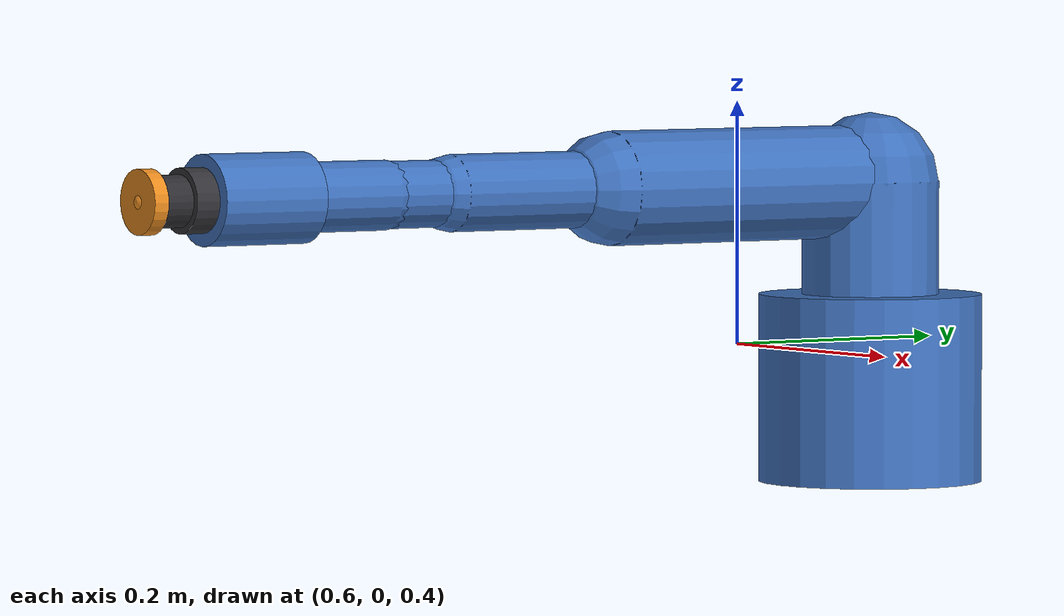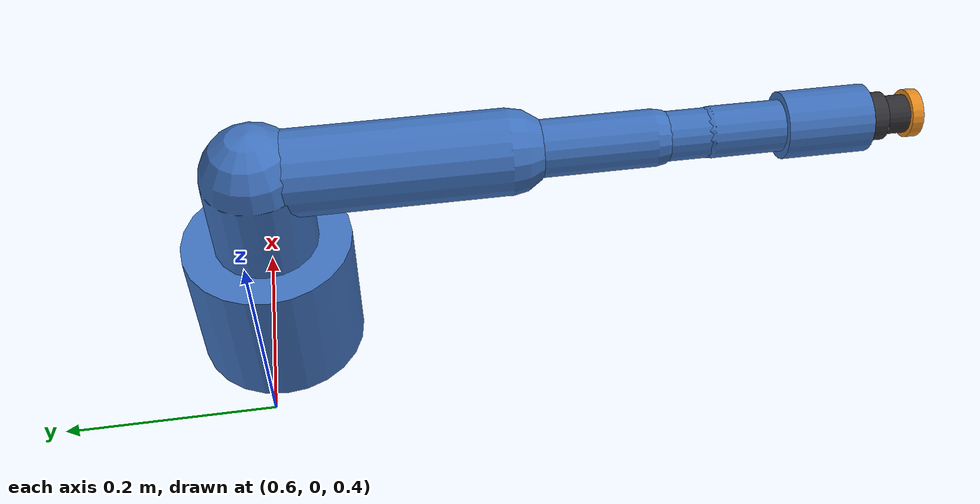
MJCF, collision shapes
<mujoco model="RealMan RM65-B pneumatic polishing arm">
  <compiler angle="radian" meshdir="assets/rm65" autolimits="true"/>
  <option integrator="implicitfast"/>

  <default>
    <joint armature="0.03" damping="0.6"/>
    <geom friction="0.7 0.01 0.0001"/>
    <default class="visual">
      <geom type="mesh" contype="0" conaffinity="0" group="2" rgba="0.82 0.84 0.90 1"/>
    </default>
    <default class="collision">
      <geom group="3" rgba="0.25 0.45 0.75 0.18"/>
    </default>
  </default>

  <asset>
    <mesh name="rm_base" file="base_link.STL"/>
    <mesh name="rm_link1" file="link1.STL"/>
    <mesh name="rm_link2" file="link2.STL"/>
    <mesh name="rm_link3" file="link3.STL"/>
    <mesh name="rm_link4" file="link4.STL"/>
    <mesh name="rm_link5" file="link5.STL"/>
    <mesh name="rm_link6" file="link6.STL"/>
  </asset>

  <worldbody>
    <!-- Right-side floor pedestal.  This placement and zero-yaw mounting let one
         continuous, collision-free elbow branch cover the complete 0.36 m part. -->
    <body name="base_link" pos="0.78 0 0.30" quat="1 0 0 0">
      <inertial mass="0.8410708" pos="-0.0004333 -0.0000355 0.0599428"
                fullinertia="0.00172611 0.00170987 0.00090402 0.00000253 -0.00003677 0.00000168"/>
      <geom mesh="rm_base" class="visual"/>
      <geom type="cylinder" size="0.09 0.075" pos="0 0 0.075" class="collision"/>

      <body name="Link1" pos="0 0 0.2405">
        <joint name="joint1" axis="0 0 1" range="-3.1 3.1"/>
        <inertial mass="0.5935634" pos="0 0.021108 -0.0251854"
                  fullinertia="0.00126614 0.00118168 0.00056135 -0.00000001 -0.00000001 -0.00021122"/>
        <geom mesh="rm_link1" class="visual"/>
        <geom type="capsule" fromto="0 0 0 0 0 -0.10" size="0.055" class="collision"/>

        <body name="Link2" euler="1.5708 -1.5708 0">
          <joint name="joint2" axis="0 0 1" range="-2.268 2.268"/>
          <inertial mass="0.8641750" pos="0.152256 0 -0.006203"
                    fullinertia="0.00089150 0.00733754 0.00697869 -0.00000002 0.00156246 0.00000001"/>
          <geom mesh="rm_link2" class="visual"/>
          <geom type="capsule" fromto="0 0 0 0.256 0 0" size="0.045" class="collision"/>

          <body name="Link3" pos="0.256 0 0" euler="0 0 1.5708">
            <joint name="joint3" axis="0 0 1" range="-2.355 2.355"/>
            <inertial mass="0.2896337" pos="0 -0.059593 0.010569"
                      fullinertia="0.00063737 0.00015648 0.00061418 -0.00000007 -0.00000004 -0.00014461"/>
            <geom mesh="rm_link3" class="visual"/>
            <geom type="capsule" fromto="0 0 0 0 -0.15 0" size="0.030" class="collision"/>

            <body name="Link4" pos="0 -0.21 0" euler="1.5708 0 0">
              <joint name="joint4" axis="0 0 1" range="-3.1 3.1"/>
              <inertial mass="0.2394198" pos="0 -0.018042 -0.021539"
                        fullinertia="0.00028594 0.00026273 0.00011989 0 0 0.00004424"/>
              <geom mesh="rm_link4" class="visual"/>
              <geom type="capsule" fromto="0 0 0 0 0 -0.08" size="0.026" class="collision"/>

              <body name="Link5" euler="-1.5708 0 0">
                <joint name="joint5" axis="0 0 1" range="-2.233 2.233"/>
                <inertial mass="0.2187998" pos="0 -0.059381 0.007368"
                          fullinertia="0.00035054 0.00010493 0.00033448 -0.00000003 -0.00000002 -0.00007824"/>
                <geom mesh="rm_link5" class="visual"/>
                <geom type="capsule" fromto="0 0 0 0 -0.115 0" size="0.027" class="collision"/>

                <body name="Link6" pos="0 -0.144 0" euler="1.5708 0 0">
                  <joint name="joint6" axis="0 0 1" range="-6.28 6.28"/>
                  <inertial mass="0.0649018" pos="0.000714 -0.000397 -0.012672"
                            fullinertia="0.00002028 0.00001880 0.00003179 -0.00000133 -0.00000003 0"/>
                  <geom mesh="rm_link6" class="visual"/>
                  <geom type="cylinder" size="0.035 0.045" pos="0 0 -0.025" class="collision"/>

                  <geom name="tool_flange_adapter" type="cylinder"
                        size="0.018 0.006" pos="0 0 0.006"
                        rgba="0.45 0.47 0.50 1" contype="0" conaffinity="0"/>

                  <body name="pneumatic_tool_mount" pos="0 0 0.012">
                    <geom type="cylinder" size="0.025 0.014" pos="0 0 0.014"
                          rgba="0.20 0.20 0.22 1" contype="0" conaffinity="0"/>
                    <body name="pneumatic_slide" pos="0 0 0.025">
                      <joint name="tool_compliance" type="slide" axis="0 0 1"
                             range="-0.008 0.012" stiffness="1200" damping="55"
                             springref="0" armature="0.05"/>
                      <inertial mass="0.24" pos="0 0 0.015" diaginertia="0.00018 0.00018 0.00012"/>
                      <geom type="cylinder" size="0.020 0.015" pos="0 0 0.015"
                            rgba="0.18 0.18 0.20 1" contype="0" conaffinity="0"/>
                      <geom name="pad_visual" type="cylinder" size="0.025 0.006"
                            pos="0 0 0.034" rgba="0.92 0.55 0.12 1"
                            contype="0" conaffinity="0"/>
                      <geom name="pad_geom" type="sphere" size="0.008"
                            pos="0 0 0.034" rgba="0.92 0.55 0.12 0.15"
                            contype="2" conaffinity="2" friction="0.9 0.02 0.001"
                            solref="0.012 1" solimp="0.9 0.95 0.001"/>
                      <site name="tcp_site" pos="0 0 0.028" size="0.006" rgba="1 0 0 1"/>
                    </body>
                  </body>
                </body>
              </body>
            </body>
          </body>
        </body>
      </body>
    </body>
  </worldbody>

  <actuator>
    <motor name="actuator1" joint="joint1" ctrlrange="-60 60"/>
    <motor name="actuator2" joint="joint2" ctrlrange="-60 60"/>
    <motor name="actuator3" joint="joint3" ctrlrange="-30 30"/>
    <motor name="actuator4" joint="joint4" ctrlrange="-10 10"/>
    <motor name="actuator5" joint="joint5" ctrlrange="-10 10"/>
    <motor name="actuator6" joint="joint6" ctrlrange="-10 10"/>
    <motor name="pneumatic_force" joint="tool_compliance" ctrlrange="0 20"/>
  </actuator>

  <keyframe>
    <!-- Numerical IK solution: TCP above the first raster point, tool normal down. -->
    <key name="home" qpos="-1.212272797 0.106864358 -0.101170519 -0.000003673 -1.576490166 0.720000000 0"
         ctrl="0 0 0 0 0 0 4"/>
  </keyframe>

  <contact>
    <exclude body1="base_link" body2="Link1"/>
    <exclude body1="Link1" body2="Link2"/>
    <exclude body1="Link2" body2="Link3"/>
    <exclude body1="Link3" body2="Link4"/>
    <!-- Conservative capsule proxies overlap across this folded elbow even
         though the vendor visual meshes do not. Exclude that false pair. -->
    <exclude body1="Link3" body2="Link5"/>
    <exclude body1="Link4" body2="Link5"/>
    <exclude body1="Link5" body2="Link6"/>
  </contact>
</mujoco>
